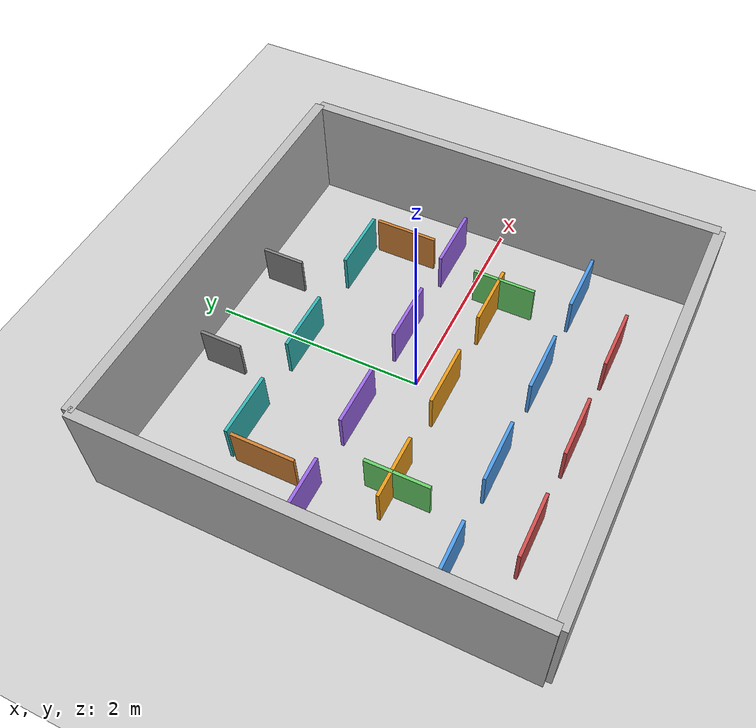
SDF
<?xml version="1.0"?>
<sdf version="1.6">
    <world name="default">

        <!-- 基础物理和场景插件 -->
        <plugin filename="gz-sim-physics-system"
            name="gz::sim::systems::Physics" />
        <plugin filename="gz-sim-user-commands-system"
            name="gz::sim::systems::UserCommands" />
        <plugin filename="gz-sim-scene-broadcaster-system"
            name="gz::sim::systems::SceneBroadcaster" />

        <!-- 传感器插件（激光雷达、摄像头等需要这个）-->
        <plugin filename="gz-sim-sensors-system"
            name="gz::sim::systems::Sensors">
            <render_engine>ogre2</render_engine>
        </plugin>

        <!-- IMU插件 -->
        <plugin filename="gz-sim-imu-system" name="gz::sim::systems::Imu" />

        <!-- 光源 -->
        <light type="directional" name="sun">
            <cast_shadows>true</cast_shadows>
            <pose>0 0 10 0 0 0</pose>
            <diffuse>0.8 0.8 0.8 1</diffuse>
            <specular>0.2 0.2 0.2 1</specular>
            <attenuation>
                <range>1000</range>
                <constant>0.9</constant>
                <linear>0.01</linear>
                <quadratic>0.001</quadratic>
            </attenuation>
            <direction>-0.5 0.1 -0.9</direction>
        </light>

        <!-- 地面 -->
        <model name="ground_plane">
            <static>true</static>
            <link name="link">
                <collision name="collision">
                    <geometry>
                        <plane>
                            <normal>0 0 1</normal>
                        </plane>
                    </geometry>
                </collision>
                <visual name="visual">
                    <geometry>
                        <plane>
                            <normal>0 0 1</normal>
                            <size>100 100</size>
                        </plane>
                    </geometry>
                    <material>
                        <ambient>0.8 0.8 0.8 1</ambient>
                        <diffuse>0.8 0.8 0.8 1</diffuse>
                    </material>
                </visual>
            </link>
        </model>

        <!-- 右墙 x=2 -->
        <model name="wall_1">
            <static>true</static>
            <pose>2 0 0.5 0 0 0</pose>
            <link name="link">
                <collision name="collision">
                    <geometry>
                        <box>
                            <size>0.1 4 1</size>
                        </box>
                    </geometry>
                </collision>
                <visual name="visual">
                    <geometry>
                        <box>
                            <size>0.1 4 1</size>
                        </box>
                    </geometry>
                </visual>
            </link>
        </model>

        <!-- 前墙 y=2 -->
        <model name="wall_2">
            <static>true</static>
            <pose>0 2 0.5 0 0 0</pose>
            <link name="link">
                <collision name="collision">
                    <geometry>
                        <box>
                            <size>4 0.1 1</size>
                        </box>
                    </geometry>
                </collision>
                <visual name="visual">
                    <geometry>
                        <box>
                            <size>4 0.1 1</size>
                        </box>
                    </geometry>
                </visual>
            </link>
        </model>

        <!-- 左墙 x=-2 -->
        <model name="wall_3">
            <static>true</static>
            <pose>-2 0 0.5 0 0 0</pose>
            <link name="link">
                <collision name="collision">
                    <geometry>
                        <box>
                            <size>0.1 4 1</size>
                        </box>
                    </geometry>
                </collision>
                <visual name="visual">
                    <geometry>
                        <box>
                            <size>0.1 4 1</size>
                        </box>
                    </geometry>
                </visual>
            </link>
        </model>

        <!-- 后墙 y=-2 -->
        <model name="wall_4">
            <static>true</static>
            <pose>0 -2 0.5 0 0 0</pose>
            <link name="link">
                <collision name="collision">
                    <geometry>
                        <box>
                            <size>4 0.1 1</size>
                        </box>
                    </geometry>
                </collision>
                <visual name="visual">
                    <geometry>
                        <box>
                            <size>4 0.1 1</size>
                        </box>
                    </geometry>
                </visual>
            </link>
        </model>

        <!-- ========== Nav2 复杂通道测试障碍物 ==========
             单个障碍物尺寸：0.60m x 0.03m x 0.40m。
             布局目标：多排错位门洞、S 形绕行、侧向死胡同。
             主要可通过门洞净宽约 0.40m，局部最窄约 0.35m。 -->

        <model name="nav2_maze_obstacles">
            <static>true</static>
            <pose>0 0 0 0 0 0</pose>

            <!-- row y=-1.50: south staggered gate line -->
            <link name="obstacle_south_row_1">
                <pose>-1.05 -1.50 0.20 0 0 0</pose>
                <collision name="collision">
                    <geometry>
                        <box>
                            <size>0.60 0.03 0.40</size>
                        </box>
                    </geometry>
                </collision>
                <visual name="visual">
                    <geometry>
                        <box>
                            <size>0.60 0.03 0.40</size>
                        </box>
                    </geometry>
                    <material>
                        <ambient>0.8 0.3 0.3 1</ambient>
                        <diffuse>0.8 0.3 0.3 1</diffuse>
                    </material>
                </visual>
            </link>
            <link name="obstacle_south_row_2">
                <pose>-0.05 -1.50 0.20 0 0 0</pose>
                <collision name="collision">
                    <geometry>
                        <box>
                            <size>0.60 0.03 0.40</size>
                        </box>
                    </geometry>
                </collision>
                <visual name="visual">
                    <geometry>
                        <box>
                            <size>0.60 0.03 0.40</size>
                        </box>
                    </geometry>
                    <material>
                        <ambient>0.8 0.3 0.3 1</ambient>
                        <diffuse>0.8 0.3 0.3 1</diffuse>
                    </material>
                </visual>
            </link>
            <link name="obstacle_south_row_3">
                <pose>0.95 -1.50 0.20 0 0 0</pose>
                <collision name="collision">
                    <geometry>
                        <box>
                            <size>0.60 0.03 0.40</size>
                        </box>
                    </geometry>
                </collision>
                <visual name="visual">
                    <geometry>
                        <box>
                            <size>0.60 0.03 0.40</size>
                        </box>
                    </geometry>
                    <material>
                        <ambient>0.8 0.3 0.3 1</ambient>
                        <diffuse>0.8 0.3 0.3 1</diffuse>
                    </material>
                </visual>
            </link>

            <!-- row y=-1.00: shifted gates force lane change -->
            <link name="obstacle_lower_row_1">
                <pose>-1.55 -1.00 0.20 0 0 0</pose>
                <collision name="collision">
                    <geometry>
                        <box>
                            <size>0.60 0.03 0.40</size>
                        </box>
                    </geometry>
                </collision>
                <visual name="visual">
                    <geometry>
                        <box>
                            <size>0.60 0.03 0.40</size>
                        </box>
                    </geometry>
                    <material>
                        <ambient>0.3 0.6 0.9 1</ambient>
                        <diffuse>0.3 0.6 0.9 1</diffuse>
                    </material>
                </visual>
            </link>
            <link name="obstacle_lower_row_2">
                <pose>-0.55 -1.00 0.20 0 0 0</pose>
                <collision name="collision">
                    <geometry>
                        <box>
                            <size>0.60 0.03 0.40</size>
                        </box>
                    </geometry>
                </collision>
                <visual name="visual">
                    <geometry>
                        <box>
                            <size>0.60 0.03 0.40</size>
                        </box>
                    </geometry>
                    <material>
                        <ambient>0.3 0.6 0.9 1</ambient>
                        <diffuse>0.3 0.6 0.9 1</diffuse>
                    </material>
                </visual>
            </link>
            <link name="obstacle_lower_row_3">
                <pose>0.45 -1.00 0.20 0 0 0</pose>
                <collision name="collision">
                    <geometry>
                        <box>
                            <size>0.60 0.03 0.40</size>
                        </box>
                    </geometry>
                </collision>
                <visual name="visual">
                    <geometry>
                        <box>
                            <size>0.60 0.03 0.40</size>
                        </box>
                    </geometry>
                    <material>
                        <ambient>0.3 0.6 0.9 1</ambient>
                        <diffuse>0.3 0.6 0.9 1</diffuse>
                    </material>
                </visual>
            </link>
            <link name="obstacle_lower_row_4">
                <pose>1.45 -1.00 0.20 0 0 0</pose>
                <collision name="collision">
                    <geometry>
                        <box>
                            <size>0.60 0.03 0.40</size>
                        </box>
                    </geometry>
                </collision>
                <visual name="visual">
                    <geometry>
                        <box>
                            <size>0.60 0.03 0.40</size>
                        </box>
                    </geometry>
                    <material>
                        <ambient>0.3 0.6 0.9 1</ambient>
                        <diffuse>0.3 0.6 0.9 1</diffuse>
                    </material>
                </visual>
            </link>

            <!-- vertical blockers build S turns and dead ends -->
            <link name="obstacle_lower_turn_left">
                <pose>-1.1 -0.35 0.20 0 0 1.5708</pose>
                <collision name="collision">
                    <geometry>
                        <box>
                            <size>0.60 0.03 0.40</size>
                        </box>
                    </geometry>
                </collision>
                <visual name="visual">
                    <geometry>
                        <box>
                            <size>0.60 0.03 0.40</size>
                        </box>
                    </geometry>
                    <material>
                        <ambient>0.4 0.8 0.4 1</ambient>
                        <diffuse>0.4 0.8 0.4 1</diffuse>
                    </material>
                </visual>
            </link>
            <link name="obstacle_lower_turn_right">
                <pose>1.15 -0.35 0.20 0 0 1.5708</pose>
                <collision name="collision">
                    <geometry>
                        <box>
                            <size>0.60 0.03 0.40</size>
                        </box>
                    </geometry>
                </collision>
                <visual name="visual">
                    <geometry>
                        <box>
                            <size>0.60 0.03 0.40</size>
                        </box>
                    </geometry>
                    <material>
                        <ambient>0.4 0.8 0.4 1</ambient>
                        <diffuse>0.4 0.8 0.4 1</diffuse>
                    </material>
                </visual>
            </link>

            <!-- row y=-0.30: center gate line -->
            <link name="obstacle_center_row_1">
                <pose>-1.05 -0.30 0.20 0 0 0</pose>
                <collision name="collision">
                    <geometry>
                        <box>
                            <size>0.60 0.03 0.40</size>
                        </box>
                    </geometry>
                </collision>
                <visual name="visual">
                    <geometry>
                        <box>
                            <size>0.60 0.03 0.40</size>
                        </box>
                    </geometry>
                    <material>
                        <ambient>0.9 0.6 0.1 1</ambient>
                        <diffuse>0.9 0.6 0.1 1</diffuse>
                    </material>
                </visual>
            </link>
            <link name="obstacle_center_row_2">
                <pose>-0.05 -0.30 0.20 0 0 0</pose>
                <collision name="collision">
                    <geometry>
                        <box>
                            <size>0.60 0.03 0.40</size>
                        </box>
                    </geometry>
                </collision>
                <visual name="visual">
                    <geometry>
                        <box>
                            <size>0.60 0.03 0.40</size>
                        </box>
                    </geometry>
                    <material>
                        <ambient>0.9 0.6 0.1 1</ambient>
                        <diffuse>0.9 0.6 0.1 1</diffuse>
                    </material>
                </visual>
            </link>
            <link name="obstacle_center_row_3">
                <pose>0.95 -0.30 0.20 0 0 0</pose>
                <collision name="collision">
                    <geometry>
                        <box>
                            <size>0.60 0.03 0.40</size>
                        </box>
                    </geometry>
                </collision>
                <visual name="visual">
                    <geometry>
                        <box>
                            <size>0.60 0.03 0.40</size>
                        </box>
                    </geometry>
                    <material>
                        <ambient>0.9 0.6 0.1 1</ambient>
                        <diffuse>0.9 0.6 0.1 1</diffuse>
                    </material>
                </visual>
            </link>

            <!-- row y=0.30: shifted gate line -->
            <link name="obstacle_upper_row_1">
                <pose>-1.55 0.30 0.20 0 0 0</pose>
                <collision name="collision">
                    <geometry>
                        <box>
                            <size>0.60 0.03 0.40</size>
                        </box>
                    </geometry>
                </collision>
                <visual name="visual">
                    <geometry>
                        <box>
                            <size>0.60 0.03 0.40</size>
                        </box>
                    </geometry>
                    <material>
                        <ambient>0.6 0.4 0.9 1</ambient>
                        <diffuse>0.6 0.4 0.9 1</diffuse>
                    </material>
                </visual>
            </link>
            <link name="obstacle_upper_row_2">
                <pose>-0.55 0.30 0.20 0 0 0</pose>
                <collision name="collision">
                    <geometry>
                        <box>
                            <size>0.60 0.03 0.40</size>
                        </box>
                    </geometry>
                </collision>
                <visual name="visual">
                    <geometry>
                        <box>
                            <size>0.60 0.03 0.40</size>
                        </box>
                    </geometry>
                    <material>
                        <ambient>0.6 0.4 0.9 1</ambient>
                        <diffuse>0.6 0.4 0.9 1</diffuse>
                    </material>
                </visual>
            </link>
            <link name="obstacle_upper_row_3">
                <pose>0.45 0.30 0.20 0 0 0</pose>
                <collision name="collision">
                    <geometry>
                        <box>
                            <size>0.60 0.03 0.40</size>
                        </box>
                    </geometry>
                </collision>
                <visual name="visual">
                    <geometry>
                        <box>
                            <size>0.60 0.03 0.40</size>
                        </box>
                    </geometry>
                    <material>
                        <ambient>0.6 0.4 0.9 1</ambient>
                        <diffuse>0.6 0.4 0.9 1</diffuse>
                    </material>
                </visual>
            </link>
            <link name="obstacle_upper_row_4">
                <pose>1.45 0.30 0.20 0 0 0</pose>
                <collision name="collision">
                    <geometry>
                        <box>
                            <size>0.60 0.03 0.40</size>
                        </box>
                    </geometry>
                </collision>
                <visual name="visual">
                    <geometry>
                        <box>
                            <size>0.60 0.03 0.40</size>
                        </box>
                    </geometry>
                    <material>
                        <ambient>0.6 0.4 0.9 1</ambient>
                        <diffuse>0.6 0.4 0.9 1</diffuse>
                    </material>
                </visual>
            </link>

            <!-- side pockets: short dead-end branches for local planner recovery tests -->
            <link name="obstacle_left_deadend_cap">
                <pose>-1.35 0.75 0.20 0 0 1.5708</pose>
                <collision name="collision">
                    <geometry>
                        <box>
                            <size>0.60 0.03 0.40</size>
                        </box>
                    </geometry>
                </collision>
                <visual name="visual">
                    <geometry>
                        <box>
                            <size>0.60 0.03 0.40</size>
                        </box>
                    </geometry>
                    <material>
                        <ambient>0.8 0.5 0.2 1</ambient>
                        <diffuse>0.8 0.5 0.2 1</diffuse>
                    </material>
                </visual>
            </link>
            <link name="obstacle_right_deadend_cap">
                <pose>1.35 0.75 0.20 0 0 1.5708</pose>
                <collision name="collision">
                    <geometry>
                        <box>
                            <size>0.60 0.03 0.40</size>
                        </box>
                    </geometry>
                </collision>
                <visual name="visual">
                    <geometry>
                        <box>
                            <size>0.60 0.03 0.40</size>
                        </box>
                    </geometry>
                    <material>
                        <ambient>0.8 0.5 0.2 1</ambient>
                        <diffuse>0.8 0.5 0.2 1</diffuse>
                    </material>
                </visual>
            </link>

            <!-- row y=1.10: north gate line -->
            <link name="obstacle_north_row_1">
                <pose>-1.05 1.10 0.20 0 0 0</pose>
                <collision name="collision">
                    <geometry>
                        <box>
                            <size>0.60 0.03 0.40</size>
                        </box>
                    </geometry>
                </collision>
                <visual name="visual">
                    <geometry>
                        <box>
                            <size>0.60 0.03 0.40</size>
                        </box>
                    </geometry>
                    <material>
                        <ambient>0.2 0.7 0.7 1</ambient>
                        <diffuse>0.2 0.7 0.7 1</diffuse>
                    </material>
                </visual>
            </link>
            <link name="obstacle_north_row_2">
                <pose>-0.05 1.10 0.20 0 0 0</pose>
                <collision name="collision">
                    <geometry>
                        <box>
                            <size>0.60 0.03 0.40</size>
                        </box>
                    </geometry>
                </collision>
                <visual name="visual">
                    <geometry>
                        <box>
                            <size>0.60 0.03 0.40</size>
                        </box>
                    </geometry>
                    <material>
                        <ambient>0.2 0.7 0.7 1</ambient>
                        <diffuse>0.2 0.7 0.7 1</diffuse>
                    </material>
                </visual>
            </link>
            <link name="obstacle_north_row_3">
                <pose>1.05 1.10 0.20 0 0 0</pose>
                <collision name="collision">
                    <geometry>
                        <box>
                            <size>0.60 0.03 0.40</size>
                        </box>
                    </geometry>
                </collision>
                <visual name="visual">
                    <geometry>
                        <box>
                            <size>0.60 0.03 0.40</size>
                        </box>
                    </geometry>
                    <material>
                        <ambient>0.2 0.7 0.7 1</ambient>
                        <diffuse>0.2 0.7 0.7 1</diffuse>
                    </material>
                </visual>
            </link>

            <link name="obstacle_final_turn_left">
                <pose>-0.55 1.65 0.20 0 0 1.5708</pose>
                <collision name="collision">
                    <geometry>
                        <box>
                            <size>0.4 0.03 0.40</size>
                        </box>
                    </geometry>
                </collision>
                <visual name="visual">
                    <geometry>
                        <box>
                            <size>0.4 0.03 0.40</size>
                        </box>
                    </geometry>
                    <material>
                        <ambient>0.5 0.5 0.5 1</ambient>
                        <diffuse>0.5 0.5 0.5 1</diffuse>
                    </material>
                </visual>
            </link>
            <link name="obstacle_final_turn_right">
                <pose>0.55 1.65 0.20 0 0 1.5708</pose>
                <collision name="collision">
                    <geometry>
                        <box>
                            <size>0.4 0.03 0.40</size>
                        </box>
                    </geometry>
                </collision>
                <visual name="visual">
                    <geometry>
                        <box>
                            <size>0.4 0.03 0.40</size>
                        </box>
                    </geometry>
                    <material>
                        <ambient>0.5 0.5 0.5 1</ambient>
                        <diffuse>0.5 0.5 0.5 1</diffuse>
                    </material>
                </visual>
            </link>
        </model>

    </world>
</sdf>
